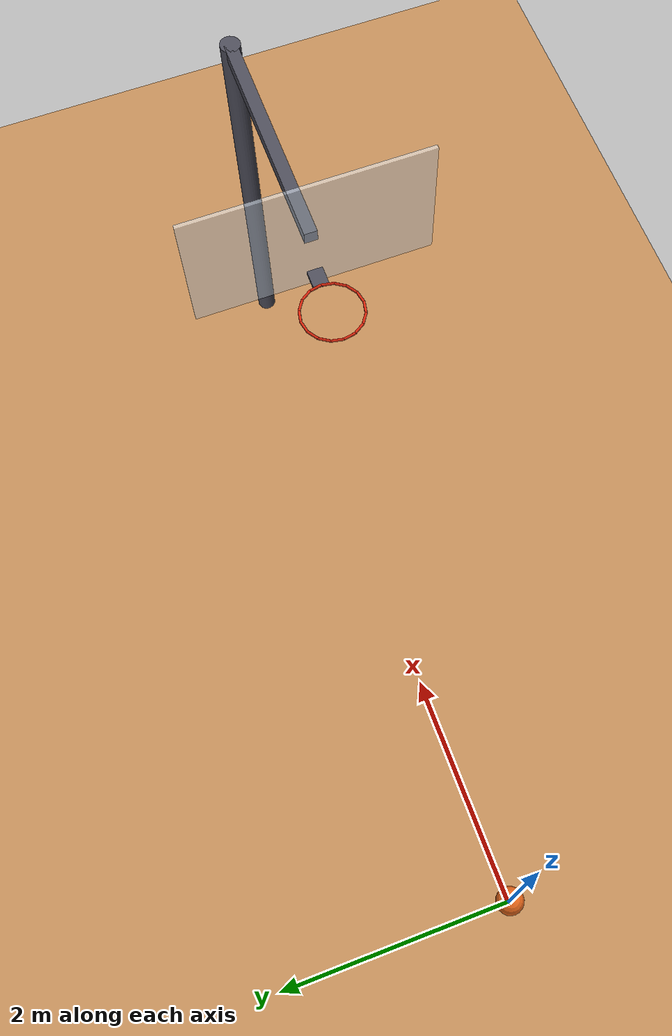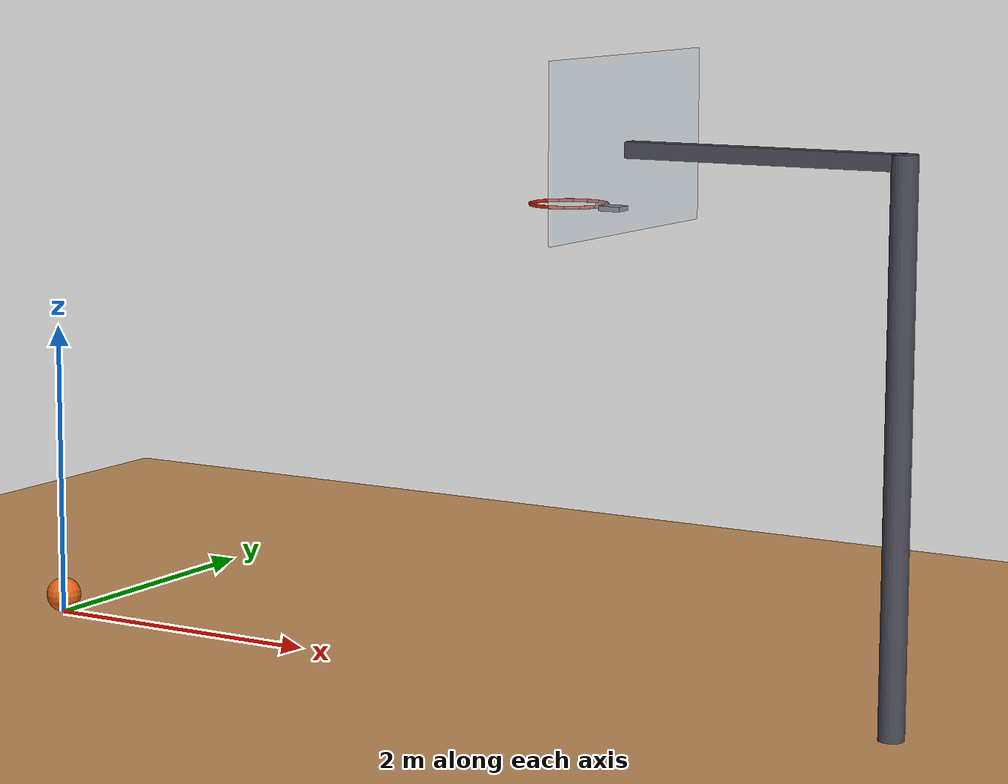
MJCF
<mujoco model="basketball_shot">
  <option timestep="0.002" gravity="0 0 -9.81"/>

  <visual>
    <global offwidth="1280" offheight="720"/>
  </visual>

  <asset>
    <material name="court" rgba="0.75 0.55 0.35 1"/>
    <material name="orange" rgba="0.9 0.4 0.1 1"/>
    <material name="rimred" rgba="0.85 0.15 0.05 1"/>
    <material name="glass" rgba="0.9 0.95 1 0.5"/>
    <material name="steel" rgba="0.3 0.3 0.35 1"/>
  </asset>

  <worldbody>
    <light name="sun" pos="2 -3 8" dir="0 0.3 -1" directional="true"/>
    <camera name="side" pos="2.5 -9 2.5" xyaxes="1 0 0 0 0.2 1"/>
    <geom name="floor" type="plane" pos="3 0 0" size="10 10 0.1" material="court"/>

    <body name="ball" pos="0 0 0.12">
      <freejoint/>
      <inertial pos="0 0 0" mass="0.62" diaginertia="0.005853 0.005853 0.005853"/>
      <geom name="ball" type="sphere" size="0.119" material="orange" solref="0.004 0.15" friction="0.8 0.01 0.001"/>
    </body>

    <body name="hoop" pos="4 0 3.05">
      <geom name="rim0" type="capsule" size="0.01" fromto="0.2386 0 0 0.22044 0.09131 0" material="rimred"/>
      <geom name="rim1" type="capsule" size="0.01" fromto="0.22044 0.09131 0 0.16872 0.16872 0" material="rimred"/>
      <geom name="rim2" type="capsule" size="0.01" fromto="0.16872 0.16872 0 0.09131 0.22044 0" material="rimred"/>
      <geom name="rim3" type="capsule" size="0.01" fromto="0.09131 0.22044 0 0 0.2386 0" material="rimred"/>
      <geom name="rim4" type="capsule" size="0.01" fromto="0 0.2386 0 -0.09131 0.22044 0" material="rimred"/>
      <geom name="rim5" type="capsule" size="0.01" fromto="-0.09131 0.22044 0 -0.16872 0.16872 0" material="rimred"/>
      <geom name="rim6" type="capsule" size="0.01" fromto="-0.16872 0.16872 0 -0.22044 0.09131 0" material="rimred"/>
      <geom name="rim7" type="capsule" size="0.01" fromto="-0.22044 0.09131 0 -0.2386 0 0" material="rimred"/>
      <geom name="rim8" type="capsule" size="0.01" fromto="-0.2386 0 0 -0.22044 -0.09131 0" material="rimred"/>
      <geom name="rim9" type="capsule" size="0.01" fromto="-0.22044 -0.09131 0 -0.16872 -0.16872 0" material="rimred"/>
      <geom name="rim10" type="capsule" size="0.01" fromto="-0.16872 -0.16872 0 -0.09131 -0.22044 0" material="rimred"/>
      <geom name="rim11" type="capsule" size="0.01" fromto="-0.09131 -0.22044 0 0 -0.2386 0" material="rimred"/>
      <geom name="rim12" type="capsule" size="0.01" fromto="0 -0.2386 0 0.09131 -0.22044 0" material="rimred"/>
      <geom name="rim13" type="capsule" size="0.01" fromto="0.09131 -0.22044 0 0.16872 -0.16872 0" material="rimred"/>
      <geom name="rim14" type="capsule" size="0.01" fromto="0.16872 -0.16872 0 0.22044 -0.09131 0" material="rimred"/>
      <geom name="rim15" type="capsule" size="0.01" fromto="0.22044 -0.09131 0 0.2386 0 0" material="rimred"/>
      <geom name="bracket" type="box" pos="0.3093 0 -0.01" size="0.0707 0.06 0.015" material="steel"/>
      <geom name="backboard" type="box" pos="0.395 0 0.385" size="0.015 0.915 0.535" material="glass"/>
    </body>

    <body name="support" pos="0 0 0">
      <geom name="arm" type="box" pos="5.305 0 3.4" size="0.895 0.05 0.05" material="steel"/>
      <geom name="pole" type="cylinder" fromto="6.2 0 0 6.2 0 3.45" size="0.08" material="steel"/>
    </body>
  </worldbody>

  <keyframe>
    <key name="start" qpos="0 0 0.12 1 0 0 0" qvel="2.865 0 8.948 0 0 0"/>
  </keyframe>
</mujoco>
